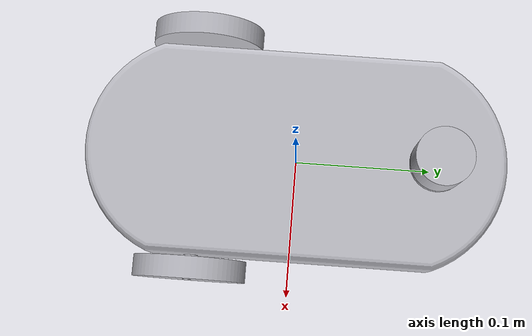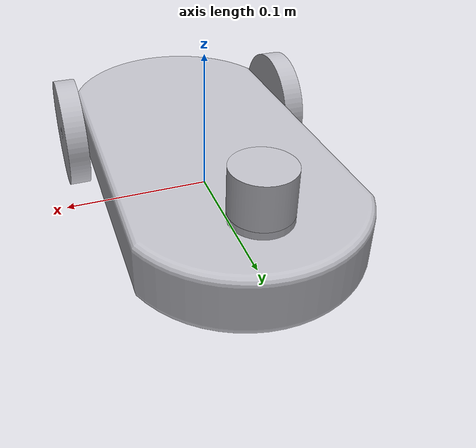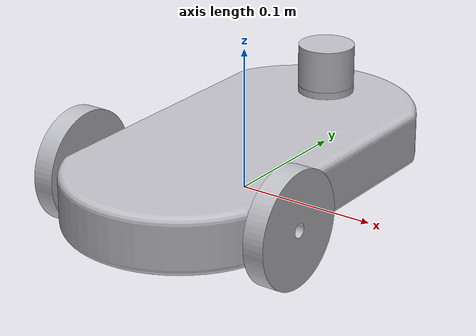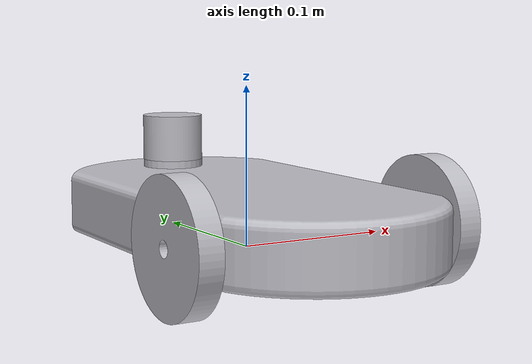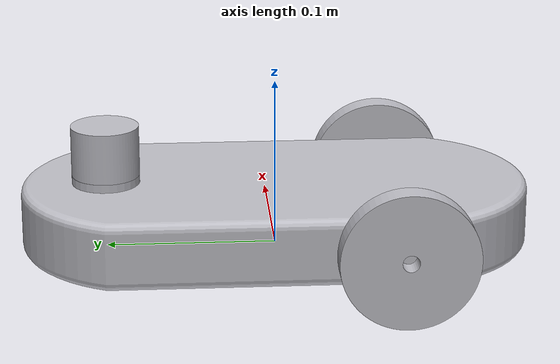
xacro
<?xml version="1.0" ?>
<robot name="car" xmlns:xacro="http://www.ros.org/wiki/xacro">

<xacro:include filename="$(find car_description)/urdf/materials.xacro" />
<xacro:include filename="$(find car_description)/urdf/car.trans" />
<xacro:include filename="$(find car_description)/urdf/car.gazebo" />
<link name="base_link">
  <inertial>
    <origin xyz="6.544927660584173e-10 0.0006698714182109139 0.019995204416368553" rpy="0 0 0"/>
    <mass value="1.7358186551507793"/>
    <inertia ixx="0.011281" iyy="0.003164" izz="0.013974" ixy="-0.0" iyz="1e-06" ixz="0.0"/>
  </inertial>
  <visual>
    <origin xyz="0 0 0" rpy="0 0 0"/>
    <geometry>
      <mesh filename="file://$(find car_description)/meshes/base_link.stl" scale="0.001 0.001 0.001"/>
    </geometry>
    <material name="silver"/>
  </visual>
  <collision>
    <origin xyz="0 0 0" rpy="0 0 0"/>
    <geometry>
      <mesh filename="file://$(find car_description)/meshes/base_link.stl" scale="0.001 0.001 0.001"/>
    </geometry>
  </collision>
</link>

<link name="left_wheel_1">
  <inertial>
    <origin xyz="-0.007499999999999979 1.4901158085223187e-10 1.734723475976807e-17" rpy="0 0 0"/>
    <mass value="0.07012034802812418"/>
    <inertia ixx="5.6e-05" iyy="2.9e-05" izz="2.9e-05" ixy="-0.0" iyz="0.0" ixz="0.0"/>
  </inertial>
  <visual>
    <origin xyz="0.08 0.07 -0.02" rpy="0 0 0"/>
    <geometry>
      <mesh filename="file://$(find car_description)/meshes/left_wheel_1.stl" scale="0.001 0.001 0.001"/>
    </geometry>
    <material name="silver"/>
  </visual>
  <collision>
    <origin xyz="0.08 0.07 -0.02" rpy="0 0 0"/>
    <geometry>
      <mesh filename="file://$(find car_description)/meshes/left_wheel_1.stl" scale="0.001 0.001 0.001"/>
    </geometry>
  </collision>
</link>

<link name="right_wheel_1">
  <inertial>
    <origin xyz="0.007499999999999979 1.4901159473001968e-10 3.8163916471489756e-17" rpy="0 0 0"/>
    <mass value="0.07012034802812418"/>
    <inertia ixx="5.6e-05" iyy="2.9e-05" izz="2.9e-05" ixy="0.0" iyz="0.0" ixz="0.0"/>
  </inertial>
  <visual>
    <origin xyz="-0.08 0.07 -0.02" rpy="0 0 0"/>
    <geometry>
      <mesh filename="file://$(find car_description)/meshes/right_wheel_1.stl" scale="0.001 0.001 0.001"/>
    </geometry>
    <material name="silver"/>
  </visual>
  <collision>
    <origin xyz="-0.08 0.07 -0.02" rpy="0 0 0"/>
    <geometry>
      <mesh filename="file://$(find car_description)/meshes/right_wheel_1.stl" scale="0.001 0.001 0.001"/>
    </geometry>
  </collision>
</link>

<link name="lidar_1">
  <inertial>
    <origin xyz="-3.769546289141941e-18 1.3877787807814457e-17 0.015" rpy="0 0 0"/>
    <mass value="0.03996105855366222"/>
    <inertia ixx="7e-06" iyy="7e-06" izz="8e-06" ixy="-0.0" iyz="0.0" ixz="-0.0"/>
  </inertial>
  <visual>
    <origin xyz="-0.0 -0.1 -0.045" rpy="0 0 0"/>
    <geometry>
      <mesh filename="file://$(find car_description)/meshes/lidar_1.stl" scale="0.001 0.001 0.001"/>
    </geometry>
    <material name="silver"/>
  </visual>
  <collision>
    <origin xyz="-0.0 -0.1 -0.045" rpy="0 0 0"/>
    <geometry>
      <mesh filename="file://$(find car_description)/meshes/lidar_1.stl" scale="0.001 0.001 0.001"/>
    </geometry>
  </collision>
</link>

<joint name="Revolute 1" type="continuous">
  <origin xyz="-0.08 -0.07 0.02" rpy="0 0 0"/>
  <parent link="base_link"/>
  <child link="left_wheel_1"/>
  <axis xyz="-1.0 -0.0 0.0"/>
</joint>

<joint name="Revolute 2" type="continuous">
  <origin xyz="0.08 -0.07 0.02" rpy="0 0 0"/>
  <parent link="base_link"/>
  <child link="right_wheel_1"/>
  <axis xyz="1.0 -0.0 0.0"/>
</joint>

<joint name="Rigid 3" type="fixed">
  <origin xyz="0.0 0.1 0.045" rpy="0 0 0"/>
  <parent link="base_link"/>
  <child link="lidar_1"/>
</joint>

</robot>

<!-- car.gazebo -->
<robot name="car" xmlns:xacro="http://www.ros.org/wiki/xacro" >

<xacro:property name="body_color" value="Gazebo/Silver" />

<gazebo>
  <plugin name="control" filename="libgazebo_ros_control.so"/>
</gazebo>
<gazebo reference="base_link">
  <material>${body_color}</material>
  <mu1>0.2</mu1>
  <mu2>0.2</mu2>
  <self_collide>true</self_collide>
  <gravity>true</gravity>
</gazebo>

<gazebo reference="left_wheel_1">
  <material>${body_color}</material>
  <mu1>0.2</mu1>
  <mu2>0.2</mu2>
  <self_collide>true</self_collide>
</gazebo>

<gazebo reference="right_wheel_1">
  <material>${body_color}</material>
  <mu1>0.2</mu1>
  <mu2>0.2</mu2>
  <self_collide>true</self_collide>
</gazebo>

<gazebo reference="lidar_1">
  <material>${body_color}</material>
  <mu1>0.2</mu1>
  <mu2>0.2</mu2>
  <self_collide>true</self_collide>
</gazebo>

</robot>
